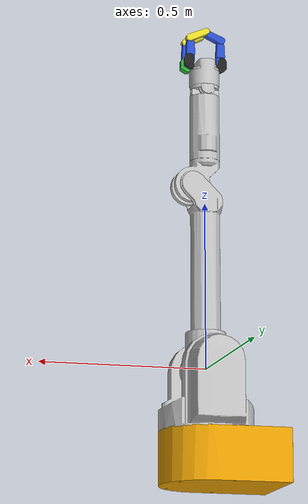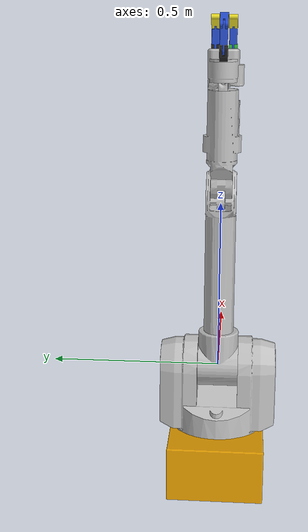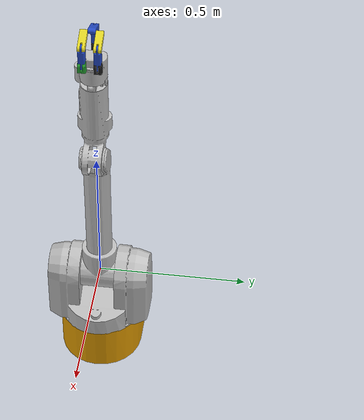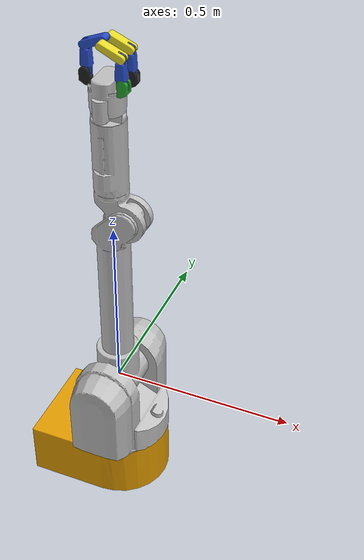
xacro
<?xml version="1.0"?>
<robot name="wam" xmlns:xacro="http://www.ros.org/wiki/xacro">

  <!-- Import all Gazebo-customization elements, including Gazebo colors -->
  <xacro:include filename="$(find wam_description)/urdf/wam.gazebo" />

  <!-- Constants for robot dimensions -->
  <xacro:property name="PI" value="3.1415926535897931"/>
  <xacro:property name="joint_damping" value="100.0" />
  <xacro:property name="joint_friction" value="0.0" />
  <xacro:property name="joint_effort_limit" value="30.0" />
  <xacro:property name="joint_velocity_limit" value="2.0" />
  <xacro:property name="mechanical_reduction" value="1.0" />

  <!-- BARRETT WAM ARM -->
  <!-- BASE_LINK (RED) -->
  <link name="wam_base_link">
    <inertial>
      <mass value="5.0" />
      <origin xyz="0 0 0" />
      <inertia  ixx="5.0" ixy="0.0"  ixz="0.0"  iyy="5.0"  iyz="0.0"  izz="5.0" />
    </inertial>
    <visual>
       <origin xyz="0 0 0" rpy="0 0 0" />
       <geometry>
	     <mesh filename="package://wam_description/meshes/wambase.dae"/>
       </geometry>
    </visual>
    <collision>
       <origin xyz="0 0 0" rpy="0 0 0 " />
       <geometry>
         <mesh filename="package://wam_description/meshes/wambase.dae"/>
       </geometry>
    </collision>
  </link>

  <!-- WAM ARM -->
  <link name="wam_link1">
    <inertial>
      <mass value="2.3936"/>
      <origin rpy="0 0 0" xyz="0.0 0.0 0.0"/>
      <inertia ixx="1.0" ixy="0.0" ixz="0.0" iyy="1.0" iyz="0.0" izz="1.0"/>
    </inertial>
    <visual>
      <origin rpy="0 0 0" xyz="0.0 0.0 0.0"/>
      <geometry name="wam_link1_visual">
        <mesh filename="package://wam_description/meshes/wam1.dae" scale="1.0 1.0 1.0"/>
      </geometry>
      <material name="Grey">
        <color rgba="0.75 0.75 0.75 1.0"/>
      </material>
    </visual>
    <collision>
      <origin rpy="0 0 0" xyz="0.0 0.0 0.0"/>
      <geometry name="wam_link1_collision">
        <mesh filename="package://wam_description/meshes/wam1.dae" scale="1.0 1.0 1.0"/>
      </geometry>
      <contact_coefficients kd="1.0" kp="1000.0" mu="0"/>
    </collision>
  </link>

  <joint name="j1_joint" type="revolute">
    <parent link="wam_base_link"/>
    <child link="wam_link1"/>
    <!-- origin xyz="0.125 0 0.55" rpy="0 0 0" / -->
    <origin xyz="0.0 0 0.0" rpy="0 0 0" />
    <axis xyz="0 0 1"/>
    <limit effort="${joint_effort_limit}" lower="-2.6" upper="2.6" velocity="${joint_velocity_limit}"/>
    <dynamics damping="${joint_damping}" friction="${joint_friction}"/>
  </joint>

  <transmission name="j1_transmission">
	<type>transmission_interface/SimpleTransmission</type>
    <joint name="j1_joint"/>
    <actuator name="j1">
	  <hardwareInterface>EffortJointInterface</hardwareInterface>
      <mechanicalReduction>1</mechanicalReduction>
      <motorTorqueConstant>1</motorTorqueConstant>
    </actuator>
  </transmission>

  <link name="wam_link2">
    <inertial>
      <origin rpy="0 0 0" xyz="0 0 0"/>
      <mass value="1.8487"/>
      <inertia ixx="1.0" ixy="0.0" ixz="0.0" iyy="0.1" iyz="0.0" izz="0.1"/>
    </inertial>
    <visual>
      <origin rpy="0 0 0" xyz="0.0 0.0 0.0"/>
      <geometry name="wam_link2_visual">
        <mesh filename="package://wam_description/meshes/wam2.dae" scale="1.0 1.0 1.0"/>
      </geometry>
      <material name="Grey">
        <color rgba="0.75 0.75 0.75 1.0"/>
      </material>
    </visual>
    <collision>
      <origin rpy="0 0 0" xyz="0.0 0.0 0.0"/>
      <geometry name="wam_link2_collision">
        <mesh filename="package://wam_description/meshes/wam2.dae" scale="1.0 1.0 1.0"/>
      </geometry>
      <contact_coefficients kd="1.0" kp="1000.0" mu="0"/>
    </collision>
  </link>

  <joint name="j2_joint" type="revolute">
    <parent link="wam_link1"/>
    <child link="wam_link2"/>
    <origin rpy="0 0 0" xyz="0.0 0.0 0.0"/>
    <axis xyz="0 1 0"/>
    <limit effort="${joint_effort_limit}" lower="-2.0" upper="2.0" velocity="${joint_velocity_limit}"/>
    <dynamics damping="${joint_damping}" friction="${joint_friction}"/>
  </joint>

  <transmission name="j2_transmission">
	<type>transmission_interface/SimpleTransmission</type>
    <joint name="j2_joint"/>
    <actuator name="j2">
	  <hardwareInterface>EffortJointInterface</hardwareInterface>
      <mechanicalReduction>1</mechanicalReduction>
      <motorTorqueConstant>1</motorTorqueConstant>
    </actuator>
  </transmission>

  <link name="wam_link3">
    <inertial>
      <mass value="0.43"/>
      <origin rpy="0 0 0" xyz="0 0 0.225"/>
      <inertia ixx="1.0" ixy="0.0" ixz="0.0" iyy="0.1" iyz="0.0" izz="0.1"/>
    </inertial>
    <visual>
      <origin rpy="0 0 0" xyz="0.0 0.0 0.0"/>
      <geometry name="wam_link3_visual">
        <mesh filename="package://wam_description/meshes/wam3.dae" scale="1.0 1.0 1.0"/>
      </geometry>
      <material name="Grey">
        <color rgba="0.75 0.75 0.75 1.0"/>
      </material>
    </visual>
    <collision>
      <origin rpy="0 0 0" xyz="0.0 0.0 0.0"/>
      <geometry name="wam_link3_collision">
        <mesh filename="package://wam_description/meshes/wam3.dae" scale="1.0 1.0 1.0"/>
      </geometry>
      <contact_coefficients kd="1.0" kp="1000.0" mu="0"/>
    </collision>
  </link>

  <joint name="j3_joint" type="revolute">
    <parent link="wam_link2"/>
    <child link="wam_link3"/>
    <origin rpy="0 0 0" xyz="0.0 0.0 0.0"/>
    <axis xyz="0 0 1"/>
    <limit effort="${joint_effort_limit}" lower="-2.8" upper="2.8" velocity="${joint_velocity_limit}"/>
    <dynamics damping="${joint_damping}" friction="${joint_friction}"/>
  </joint>

  <transmission name="j3_transmission">
	<type>transmission_interface/SimpleTransmission</type>
    <joint name="j3_joint"/>
    <actuator name="j3">
	  <hardwareInterface>EffortJointInterface</hardwareInterface>
      <mechanicalReduction>1</mechanicalReduction>
      <motorTorqueConstant>1</motorTorqueConstant>
    </actuator>
  </transmission>

  <link name="wam_link4">
    <inertial>
      <mass value="0.52"/>
      <origin rpy="0 0 0" xyz="-0.045 -0.15 0"/>
      <inertia ixx="1.0" ixy="0.0" ixz="0.0" iyy="0.1" iyz="0.0" izz="0.1"/>
    </inertial>
    <visual>
      <origin rpy="0 0 0" xyz="0.0 0.0 0.0"/>
      <geometry name="wam_link4_visual">
        <mesh filename="package://wam_description/meshes/wam4.dae" scale="1.0 1.0 1.0"/>
      </geometry>
      <material name="Grey">
        <color rgba="0.75 0.75 0.75 1.0"/>
      </material>
    </visual>
    <collision>
      <origin rpy="0 0 0" xyz="0.0 0.0 0.0"/>
      <geometry name="wam_link4_collision">
        <mesh filename="package://wam_description/meshes/wam4.dae" scale="1.0 1.0 1.0"/>
      </geometry>
      <contact_coefficients kd="1.0" kp="1000.0" mu="0"/>
    </collision>
  </link>

  <joint name="j4_joint" type="revolute">
    <parent link="wam_link3"/>
    <child link="wam_link4"/>
    <origin rpy="-1.57079632679 0 0" xyz="0.045 0.0 0.55"/>
    <axis xyz="0 0 1"/>
    <limit effort="${joint_effort_limit}" lower="-0.9" upper="2.8" velocity="${joint_velocity_limit}"/>
    <dynamics damping="${joint_damping}" friction="${joint_friction}"/>
  </joint>

  <transmission name="j4_transmission">
	<type>transmission_interface/SimpleTransmission</type>
    <joint name="j4_joint"/>
    <actuator name="j4">
	  <hardwareInterface>EffortJointInterface</hardwareInterface>
      <mechanicalReduction>1</mechanicalReduction>
      <motorTorqueConstant>1</motorTorqueConstant>
    </actuator>
  </transmission>

  <link name="wam_link5">
    <inertial>
      <origin rpy="0 0 0" xyz="0 0 0"/>
      <mass value="0.076675"/>
      <inertia ixx="1.0" ixy="0.0" ixz="0.0" iyy="0.1" iyz="0.0" izz="0.1"/>
    </inertial>
    <visual>
      <origin rpy="0 0 0" xyz="0.0 0.0 0.0"/>
      <geometry name="wam_link5_visual">
        <mesh filename="package://wam_description/meshes/wam5.dae" scale="1.0 1.0 1.0"/>
      </geometry>
      <material name="Grey">
        <color rgba="0.75 0.75 0.75 1.0"/>
      </material>
    </visual>
    <collision>
      <origin rpy="0 0 0" xyz="0.0 0.0 0.0"/>
      <geometry name="wam_link5_collision">
        <mesh filename="package://wam_description/meshes/wam5.dae" scale="1.0 1.0 1.0"/>
      </geometry>
      <contact_coefficients kd="1.0" kp="1000.0" mu="0"/>
    </collision>
  </link>

  <joint name="j5_joint" type="revolute">
    <parent link="wam_link4"/>
    <child link="wam_link5"/>
    <origin rpy="1.57079632679 0 0" xyz="-0.045 -0.3 0.0"/>
    <axis xyz="0 0 1"/>
    <limit effort="${joint_effort_limit}" lower="-4.8" upper="1.3" velocity="${joint_velocity_limit}"/>
    <dynamics damping="${joint_damping}" friction="${joint_friction}"/>
  </joint>

  <transmission name="j5_transmission">
	<type>transmission_interface/SimpleTransmission</type>
    <joint name="j5_joint"/>
    <actuator name="j5">
	  <hardwareInterface>EffortJointInterface</hardwareInterface>
      <mechanicalReduction>1</mechanicalReduction>
      <motorTorqueConstant>1</motorTorqueConstant>
    </actuator>
  </transmission>

  <link name="wam_link6">
    <inertial>
      <origin rpy="0 0 0" xyz="0 0 0"/>
      <mass value="0.10695"/>
      <inertia ixx="1.0" ixy="0.0" ixz="0.0" iyy="0.1" iyz="0.0" izz="0.1"/>
    </inertial>
    <visual>
      <origin rpy="0 0 0" xyz="0.0 0.0 0.0"/>
      <geometry name="wam_link6_visual">
        <mesh filename="package://wam_description/meshes/wam6.dae" scale="1.0 1.0 1.0"/>
      </geometry>
      <material name="Grey">
        <color rgba="0.75 0.75 0.75 1.0"/>
      </material>
    </visual>
    <collision>
      <origin rpy="0 0 0" xyz="0.0 0.0 0.0"/>
      <geometry name="wam_link6_collision">
        <mesh filename="package://wam_description/meshes/wam6.dae" scale="1.0 1.0 1.0"/>
      </geometry>
      <contact_coefficients kd="1.0" kp="1000.0" mu="0"/>
    </collision>
  </link>

  <joint name="j6_joint" type="revolute">
    <parent link="wam_link5"/>
    <child link="wam_link6"/>
    <origin rpy="-1.57079632679 0 0" xyz="0.0 0.0 0.0"/>
    <axis xyz="0 0 1"/>
    <limit effort="${joint_effort_limit}" lower="-1.6" upper="1.6" velocity="${joint_velocity_limit}"/>
    <dynamics damping="${joint_damping}" friction="${joint_friction}"/>
  </joint>

  <transmission name="j6_transmission">
	<type>transmission_interface/SimpleTransmission</type>
    <joint name="j6_joint"/>
    <actuator name="j6">
	  <hardwareInterface>EffortJointInterface</hardwareInterface>
      <mechanicalReduction>1</mechanicalReduction>
      <motorTorqueConstant>1</motorTorqueConstant>
    </actuator>
  </transmission>

  <link name="wam_link7">
    <inertial>
      <origin rpy="0 0 0" xyz="0 0 0"/>
      <mass value="0.013925"/>
      <inertia ixx="1.0" ixy="0.0" ixz="0.0" iyy="0.1" iyz="0.0" izz="0.1"/>
    </inertial>
    <visual>
      <origin rpy="0 0 0" xyz="0.0 0.0 0.0"/>
      <geometry name="wam_link7_visual">
        <mesh filename="package://wam_description/meshes/wam7.dae" scale="1.0 1.0 1.0"/>
      </geometry>
      <material name="Grey">
        <color rgba="0.75 0.75 0.75 1.0"/>
      </material>
    </visual>
    <collision>
      <origin rpy="0 0 0" xyz="0.0 0.0 0.0"/>
      <geometry name="wam_link7_collision">
        <mesh filename="package://wam_description/meshes/wam7.dae" scale="1.0 1.0 1.0"/>
      </geometry>
      <contact_coefficients kd="1.0" kp="1000.0" mu="0"/>
    </collision>
  </link>

  <joint name="j7_joint" type="revolute">
    <parent link="wam_link6"/>
    <child link="wam_link7"/>
    <origin rpy="1.57079632679 0 0" xyz="0.0 0.0 0.0"/>
    <axis xyz="0 0 1"/>
    <limit effort="${joint_effort_limit}" lower="-2.2" upper="2.2" velocity="${joint_velocity_limit}"/>
    <dynamics damping="${joint_damping}" friction="${joint_friction}"/>
  </joint>

  <transmission name="j7_transmission">
	<type>transmission_interface/SimpleTransmission</type>
    <joint name="j7_joint"/>
    <actuator name="j7">
	  <hardwareInterface>EffortJointInterface</hardwareInterface>
      <mechanicalReduction>1</mechanicalReduction>
      <motorTorqueConstant>1</motorTorqueConstant>
    </actuator>
  </transmission>

  <link name="wam_tcp"/>
  <joint name="wamtcp_fix" type="fixed">
    <parent link="wam_link7"/>
    <child link="wam_tcp"/>
    <origin rpy="0 0 0" xyz="0.0 0.0 0.0"/>
  </joint>

  <!-- Import Barrett WAM robot xacro file description -->
  <xacro:include filename="$(find bh262_description)/urdf/bh_on_wam.urdf.xacro" />

  <joint name="base_footprint_bh_joint" type="fixed">
     <origin xyz="0.0 0.0 0.0" rpy="0 0 0" />
     <parent link="wam_tcp"/>
     <child link="bh_base_link"/>
  </joint>

</robot>

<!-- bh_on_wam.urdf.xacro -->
<robot name="bhand" xmlns:xacro="http://www.ros.org/wiki/xacro">

  <!-- Import all Gazebo-customization elements, including Gazebo colors -->
  <xacro:include filename="$(find bh262_description)/urdf/bh.gazebo" />

  <!-- Constants for robot dimensions -->
  <xacro:property name="PI" value="3.1415926535897931"/>
  <xacro:property name="joint_damping" value="100.0" />
  <xacro:property name="joint_friction" value="1.0" />
  <xacro:property name="joint_effort_limit" value="30.0" />
  <xacro:property name="joint_velocity_limit" value="2.0" />
  <xacro:property name="mechanical_reduction" value="1.0" />

  <!-- BASE_LINK (RED) -->
  <link name="bh_base_link">
    <inertial>
      <mass value="1.0" />
      <origin xyz="0 0 0" />
      <inertia  ixx="1.0" ixy="0.0"  ixz="0.0"  iyy="1.0"  iyz="0.0"  izz="1.0" />
    </inertial>
    <visual>
       <origin xyz="0 0 0" rpy="0 0 0" />
       <geometry>
	      <mesh filename="package://bh262_description/meshes/bhand/palm.dae"/>
       </geometry>
       <material name="Grey">
          <color rgba="0.75 0.75 0.75 1.0"/>
       </material>
    </visual>
    <collision>
       <origin xyz="0 0 0" rpy="0 0 0 " />
       <geometry name="bh_palm_collision">
          <mesh filename="package://bh262_description/meshes/bhand/palm.dae"/>
       </geometry>
       <contact_coefficients kd="1.0" kp="1000.0" mu="0"/>
    </collision>
  </link>

  <!-- BARRETT HAND -->
  <link name="bh_grasp_link"/>

  <!-- grasp link -->
  <joint name="bh_grasp_joint" type="fixed" >
	 <origin xyz="0 0 0.15" rpy="0 0 0"/>
	 <parent link="bh_base_link" />
	 <child link="bh_grasp_link" />
  </joint>

  <!-- finger 31 link -->
  <link name="bh_finger_31_link">
     <inertial>
	   <mass value="0.1"/>
	   <origin xyz="-0.046 0 0" rpy="0 0 0"/>
       <inertia ixx="0.01" ixy="0" ixz="0" iyy="0.01" iyz="0" izz="0.01" />
	 </inertial>
	 <visual>
	   <origin xyz="-0.046 0 0" rpy="0 0 0" />
	   <geometry>
	      <mesh filename="package://bh262_description/meshes/bhand/knuckle.dae" />
	   </geometry>
	   <material name="Black"/>
     </visual>
	 <collision>
	   <origin xyz="-0.046 0 0" rpy="0 0 0" />
	   <geometry>
		  <mesh filename="package://bh262_description/meshes/bhand/knuckle.dae"/>
	   </geometry>
       <contact_coefficients kd="1.0" kp="1000.0" mu="0"/>
	  </collision>
  </link>

  <!-- joint between BH_palm_link and BH_finger_31_link -->
  <!-- finger3 is the center finger and is fixed -->
  <joint name="j31_joint" type="fixed">
    <parent link="bh_base_link"/>
    <child link="bh_finger_31_link"/>
    <origin xyz="0 0 0.06" rpy="0 0 0"/>
  </joint>

  <!-- finger 32 link -->
  <link name="bh_finger_32_link">
     <inertial>
        <mass value="0.1"/>
	    <origin xyz="0 0 0" rpy="0 0 0"/>
	    <inertia ixx="0.01" ixy="0" ixz="0" iyy="0.01" iyz="0" izz="0.01" />
	 </inertial>
	 <visual>
		<origin xyz="0 0 0" rpy="0 0 0" />
		<geometry>
	      <mesh filename="package://bh262_description/meshes/bhand/finger.dae" />
		</geometry>
		<material name="Blue" />
	 </visual>
	 <collision>
		<origin xyz="0 0 0" rpy="0 0 0" />
		<geometry>
		  <mesh filename="package://bh262_description/meshes/bhand/finger.dae" />
		</geometry>
        <contact_coefficients kd="1.0" kp="1000.0" mu="0"/>
	 </collision>
  </link>

  <!-- joint between BH_finger_31_link and BH_finger_32_link -->
  <joint name="j32_joint" type="revolute">
    <parent link="bh_finger_31_link"/>
    <child link="bh_finger_32_link"/>
	<origin xyz="-0.050 0 0.030" rpy="0 0 0" />
    <axis xyz="0 1 0"/>
    <limit effort="${joint_effort_limit}" lower="-1.5708" upper="0.8727" velocity="${joint_velocity_limit}"/>
    <dynamics damping="${joint_damping}" friction="${joint_friction}"/>
  </joint>

  <transmission name="j32_transmission">
	<type>transmission_interface/SimpleTransmission</type>
    <joint name="j32_joint"/>
    <actuator name="j32">
	  <hardwareInterface>EffortJointInterface</hardwareInterface>
      <mechanicalReduction>1</mechanicalReduction>
      <motorTorqueConstant>1</motorTorqueConstant>
    </actuator>
  </transmission>

  <!-- finger 33 link -->
  <link name="bh_finger_33_link">
     <inertial>
        <mass value="0.1"/>
	    <origin xyz="0 0 0" rpy="0 0 0"/>
	    <inertia ixx="0.01" ixy="0" ixz="0" iyy="0.01" iyz="0" izz="0.01" />
	 </inertial>
	 <visual>
		<origin xyz="0 0 0" rpy="0 0 0" />
		<geometry>
	      <mesh filename="package://bh262_description/meshes/bhand/finger_tip.dae" />
		</geometry>
		<material name="Blue" />
	 </visual>
	 <collision>
		<origin xyz="0 0 0" rpy="0 0 0" />
		<geometry>
		  <mesh filename="package://bh262_description/meshes/bhand/finger_tip.dae" />
		</geometry>
        <contact_coefficients kd="1.0" kp="1000.0" mu="0"/>
	 </collision>
  </link>

  <!-- joint between BH_finger_32_link and BH_finger_33_link -->
  <joint name="j33_joint" type="revolute">
    <parent link="bh_finger_32_link"/>
    <child link="bh_finger_33_link"/>
	<origin xyz="0 0 0.07" rpy="0 0 1.57079633" />
    <axis xyz="1 0 0"/>
    <limit effort="${joint_effort_limit}" lower="0.7330" upper="1.5708" velocity="${joint_velocity_limit}"/>
    <dynamics damping="${joint_damping}" friction="${joint_friction}"/>
  </joint>

  <transmission name="j33_transmission">
	<type>transmission_interface/SimpleTransmission</type>
    <joint name="j33_joint"/>
    <actuator name="j33">
	  <hardwareInterface>EffortJointInterface</hardwareInterface>
      <mechanicalReduction>1</mechanicalReduction>
      <motorTorqueConstant>1</motorTorqueConstant>
    </actuator>
  </transmission>

  <!-- finger 1 -->
  <!-- finger 11 link -->
  <link name="bh_finger_11_link">
    <inertial>
	  <mass value="0.1"/>
      <origin xyz="-0.046 0 0" rpy="0 0 0"/>
	  <inertia ixx="0.01" ixy="0" ixz="0" iyy="0.01" iyz="0" izz="0.01" />
    </inertial>
    <visual>
      <origin xyz="-0.046 0 0" rpy="0 0 0" />
	  <geometry>
		 <mesh filename="package://bh262_description/meshes/bhand/knuckle.dae" />
	  </geometry>
      <material name="Green" />
    </visual>
    <collision>
      <origin xyz="-0.046 0 0" rpy="0 0 0" />
	  <geometry>
        <mesh filename="package://bh262_description/meshes/bhand/knuckle.dae" />
	  </geometry>
	</collision>
  </link>

  <!-- joint between BH_palm_link and BH_finger_11_link -->
  <joint name="j11_joint" type="revolute">
    <parent link="bh_base_link"/>
    <child link="bh_finger_11_link"/>
    <origin xyz="0.0 -0.025 0.06" rpy="0 0 3.14"/>
    <axis xyz="0 0 1"/>
    <limit effort="${joint_effort_limit}" lower="-3.1416" upper="0" velocity="${joint_velocity_limit}"/>
    <dynamics damping="${joint_damping}" friction="${joint_friction}"/>
  </joint>

  <transmission name="j11_transmission">
	<type>transmission_interface/SimpleTransmission</type>
    <joint name="j11_joint"/>
    <actuator name="j11">
	  <hardwareInterface>EffortJointInterface</hardwareInterface>
      <mechanicalReduction>1</mechanicalReduction>
      <motorTorqueConstant>1</motorTorqueConstant>
    </actuator>
  </transmission>

  <!-- finger 12 link -->
  <link name="bh_finger_12_link">
    <inertial>
      <mass value="0.1"/>
      <origin xyz="0 0 0" rpy="0 0 0"/>
	  <inertia ixx="0.01" ixy="0" ixz="0" iyy="0.01" iyz="0" izz="0.01" />
	</inertial>
	<visual>
	  <origin xyz="0 0 0" rpy="0 0 0" />
      <geometry>
		 <mesh filename="package://bh262_description/meshes/bhand/finger.dae" />
	   </geometry>
	   <material name="Blue" />
	</visual>
	<collision>
	  <origin xyz="0 0 0" rpy="0 0 0" />
	  <geometry>
		 <mesh filename="package://bh262_description/meshes/bhand/finger.dae" />
	  </geometry>
	</collision>
  </link>

  <!-- joint between BH_finger_11_link and BH_finger_12_link -->
  <joint name="j12_joint" type="revolute">
    <parent link="bh_finger_11_link"/>
    <child link="bh_finger_12_link"/>
    <origin xyz="-0.050 0 0.025" rpy="0 0 0"/>
    <axis xyz="0 1 0"/>
    <limit effort="${joint_effort_limit}" lower="-1.5708" upper="0.8727" velocity="${joint_velocity_limit}"/>
    <dynamics damping="${joint_damping}" friction="${joint_friction}"/>
  </joint>

  <transmission name="j12_transmission">
	<type>transmission_interface/SimpleTransmission</type>
    <joint name="j12_joint"/>
    <actuator name="j12">
	  <hardwareInterface>EffortJointInterface</hardwareInterface>
      <mechanicalReduction>1</mechanicalReduction>
      <motorTorqueConstant>1</motorTorqueConstant>
    </actuator>
  </transmission>

  <!-- finger 13 link -->
  <link name="bh_finger_13_link">
    <inertial>
      <mass value="0.1"/>
      <origin xyz="0 0 0" rpy="0 0 0"/>
	  <inertia ixx="0.01" ixy="0" ixz="0" iyy="0.01" iyz="0" izz="0.01" />
	</inertial>
	<visual>
	  <origin xyz="0 0 0" rpy="0 0 0" />
      <geometry>
		 <mesh filename="package://bh262_description/meshes/bhand/finger_tip.dae" />
	   </geometry>
	   <material name="Yellow" />
	</visual>
	<collision>
	  <origin xyz="0 0 0" rpy="0 0 0" />
	  <geometry>
		 <mesh filename="package://bh262_description/meshes/bhand/finger_tip.dae" />
	  </geometry>
	</collision>
  </link>

  <!-- joint between BH_finger_12_link and BH_finger_13_link -->
  <joint name="j13_joint" type="revolute">
    <parent link="bh_finger_12_link"/>
    <child link="bh_finger_13_link"/>
	<origin xyz="0 0 0.070" rpy="0 0 1.57079633" />
	<axis xyz="1 0 0"/>
    <limit effort="${joint_effort_limit}" lower="0.7330" upper="1.5708" velocity="${joint_velocity_limit}"/>
    <dynamics damping="${joint_damping}" friction="${joint_friction}"/>
  </joint>

  <transmission name="j13_transmission">
	<type>transmission_interface/SimpleTransmission</type>
    <joint name="j13_joint"/>
    <actuator name="j13">
	  <hardwareInterface>EffortJointInterface</hardwareInterface>
      <mechanicalReduction>1</mechanicalReduction>
      <motorTorqueConstant>1</motorTorqueConstant>
    </actuator>
  </transmission>

  <!-- finger 2 -->
  <!-- finger 21 link -->
  <link name="bh_finger_21_link">
    <inertial>
	  <mass value="0.1"/>
      <origin xyz="-0.046 0 0" rpy="0 0 0"/>
	  <inertia ixx="0.01" ixy="0" ixz="0" iyy="0.01" iyz="0" izz="0.01" />
    </inertial>
	<visual>
      <origin xyz="-0.046 0 0" rpy="0 0 0" />
      <geometry>
		 <mesh filename="package://bh262_description/meshes/bhand/knuckle.dae" />
	  </geometry>
	  <material name="Black" />
	</visual>
	<collision>
	  <origin xyz="-0.046 0 0" rpy="0 0 0" />
	  <geometry>
	    <mesh filename="package://bh262_description/meshes/bhand/knuckle.dae" />
	  </geometry>
	</collision>
  </link>

  <!-- joint between BH_palm_link and BH_finger_21_link -->
  <joint name="j21_joint" type="revolute">
    <parent link="bh_base_link"/>
    <child link="bh_finger_21_link"/>
    <origin xyz="0.0 0.025 0.06" rpy="0 0 3.14" />
    <axis xyz="0 0 1"/>
    <limit effort="${joint_effort_limit}" lower="0" upper="3.1416" velocity="${joint_velocity_limit}"/>
    <dynamics damping="${joint_damping}" friction="${joint_friction}"/>
  </joint>

  <transmission name="j21_transmission">
	<type>transmission_interface/SimpleTransmission</type>
    <joint name="j21_joint"/>
    <actuator name="j21">
	  <hardwareInterface>EffortJointInterface</hardwareInterface>
      <mechanicalReduction>1</mechanicalReduction>
      <motorTorqueConstant>1</motorTorqueConstant>
    </actuator>
  </transmission>

  <!-- finger 22 link -->
  <link name="bh_finger_22_link">
    <inertial>
	  <mass value="0.1"/>
      <origin xyz="0 0 0" rpy="0 0 0"/>
      <inertia ixx="0.01" ixy="0" ixz="0" iyy="0.01" iyz="0" izz="0.01" />
    </inertial>
    <visual>
      <origin xyz="0 0 0" rpy="0 0 0" />
	  <geometry>
	    <mesh filename="package://bh262_description/meshes/bhand/finger.dae"/>
	  </geometry>
	  <material name="Blue" />
    </visual>
	<collision>
      <origin xyz="0 0 0" rpy="0 0 0" />
	  <geometry>
        <mesh filename="package://bh262_description/meshes/bhand/finger.dae"/>
	  </geometry>
	</collision>
  </link>

  <!-- joint between BH_finger_21_link and BH_finger_22_link -->
  <joint name="j22_joint" type="revolute">
    <parent link="bh_finger_21_link"/>
    <child link="bh_finger_22_link"/>
    <origin xyz="-0.050 0 0.025" rpy="0 0 0" />
    <axis xyz="0 1 0"/>
    <limit effort="${joint_effort_limit}" lower="-1.5708" upper="0.8727" velocity="${joint_velocity_limit}"/>
    <dynamics damping="${joint_damping}" friction="${joint_friction}"/>
  </joint>

  <transmission name="j22_transmission">
	<type>transmission_interface/SimpleTransmission</type>
    <joint name="j22_joint"/>
    <actuator name="j22">
	  <hardwareInterface>EffortJointInterface</hardwareInterface>
      <mechanicalReduction>1</mechanicalReduction>
      <motorTorqueConstant>1</motorTorqueConstant>
    </actuator>
  </transmission>

  <!-- finger23 link -->
  <link name="bh_finger_23_link">
     <inertial>
	    <origin xyz="0 0 0" rpy="0 0 0"/>
		<mass value="0.1"/>
		<inertia ixx="0.01" ixy="0" ixz="0" iyy="0.01" iyz="0" izz="0.01" />
	 </inertial>
	 <visual>
		<origin xyz="0 0 0" rpy="0 0 0" />
		<geometry>
		  <mesh filename="package://bh262_description/meshes/bhand/finger_tip.dae" />
	    </geometry>
		<material name="Yellow" />
	 </visual>
	 <collision>
       <origin xyz="0 0 0" rpy="0 0 0" />
       <geometry>
         <mesh filename="package://bh262_description/meshes/bhand/finger_tip.dae"/>
	   </geometry>
	 </collision>
  </link>

  <!-- joint between BH_finger_22_link and BH_finger_23_link -->
  <joint name="j23_joint" type="revolute">
    <parent link="bh_finger_22_link"/>
    <child link="bh_finger_23_link"/>
	<origin xyz="0 0 0.070" rpy="0 0 1.57079633" />
	<axis xyz="1 0 0"/>
    <limit effort="${joint_effort_limit}" lower="0.7330" upper="1.5708" velocity="${joint_velocity_limit}"/>
    <dynamics damping="${joint_damping}" friction="${joint_friction}"/>
  </joint>

  <transmission name="j23_transmission">
	<type>transmission_interface/SimpleTransmission</type>
    <joint name="j23_joint"/>
    <actuator name="j23">
	  <hardwareInterface>EffortJointInterface</hardwareInterface>
      <mechanicalReduction>1</mechanicalReduction>
      <motorTorqueConstant>1</motorTorqueConstant>
    </actuator>
  </transmission>

</robot>
